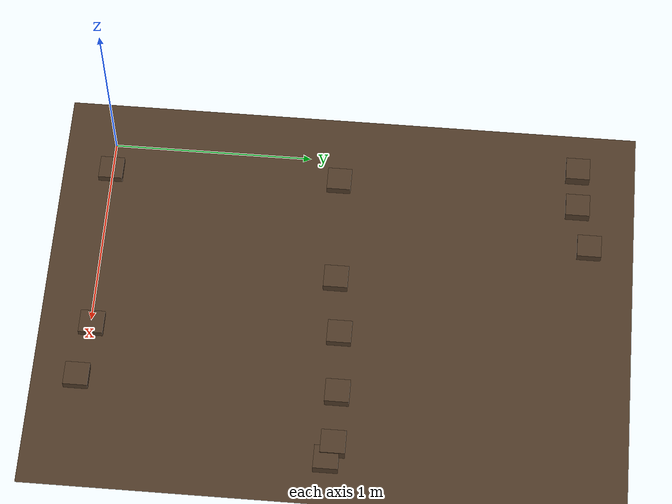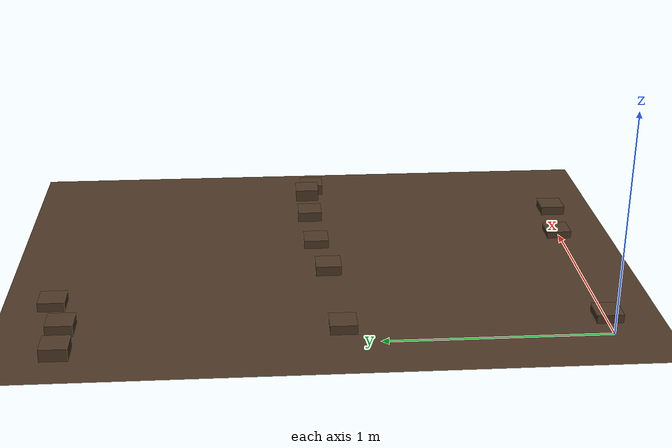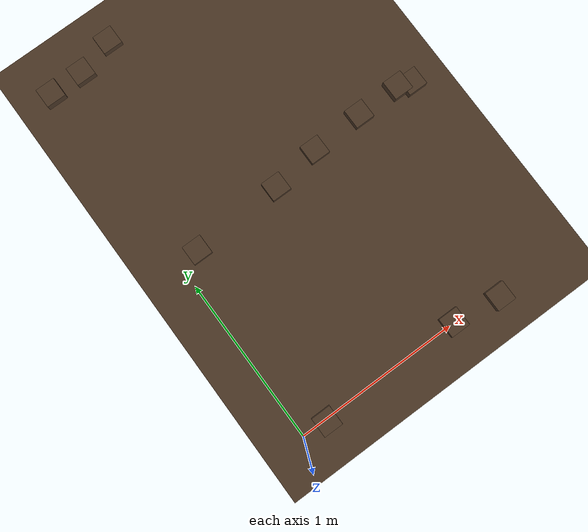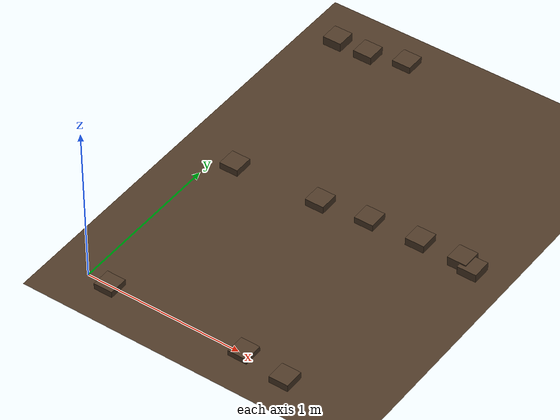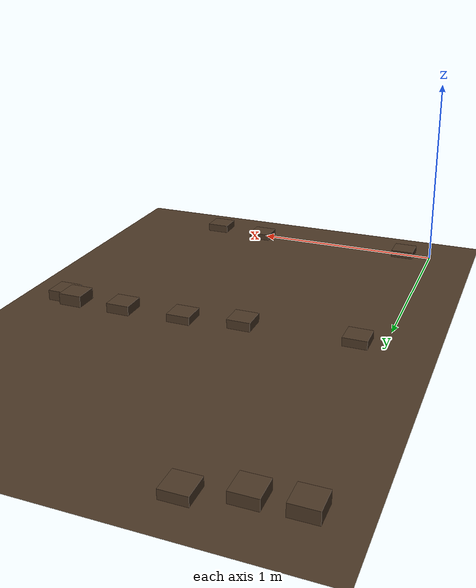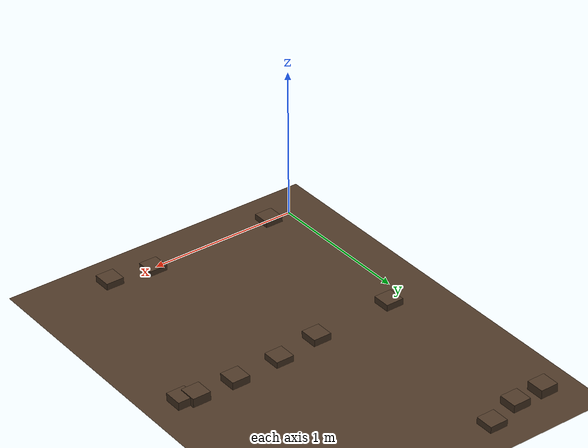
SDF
<sdf version="1.9">
 <world name="field_dev">
  <physics name="1ms" type="ignored">
   <max_step_size>0.001</max_step_size>
   <real_time_factor>1.0</real_time_factor>
  </physics>
  <plugin filename="ignition-gazebo-physics-system" name="ignition::gazebo::systems::Physics"/>
  <plugin filename="ignition-gazebo-sensors-system" name="ignition::gazebo::systems::Sensors">
   <render_engine>ogre2</render_engine>
  </plugin>
  <plugin filename="ignition-gazebo-scene-broadcaster-system" name="ignition::gazebo::systems::SceneBroadcaster"/>
  <plugin filename="ignition-gazebo-user-commands-system" name="ignition::gazebo::systems::UserCommands"/>
  <plugin filename="ignition-gazebo-imu-system" name="ignition::gazebo::systems::Imu"/>
  <scene><ambient>0.5 0.5 0.5 1</ambient><background>0.7 0.8 0.9 1</background></scene>
  <light type="directional" name="sun">
   <pose>0 0 10 0 0 0</pose>
   <diffuse>1 1 1 1</diffuse>
   <specular>0.3 0.3 0.3 1</specular>
   <direction>-0.4 0.4 -0.85</direction>
  </light>
  <model name="furrow_floor">
   <static>true</static>
   <link name="link">
    <pose>0 0 0 0.05236 0 0</pose>
    <collision name="c">
     <geometry><plane><normal>0 0 1</normal><size>200 200</size></plane></geometry>
     <surface><friction><ode><mu>0.4</mu><mu2>0.4</mu2></ode></friction></surface>
    </collision>
    <visual name="v">
     <geometry><plane><normal>0 0 1</normal><size>200 200</size></plane></geometry>
     <material><ambient>0.20 0.15 0.10 1</ambient><diffuse>0.30 0.22 0.15 1</diffuse></material>
    </visual>
   </link>
  </model>
  <model name="clod_0_0">
   <static>true</static>
   <link name="l">
    <collision name="c">
     <geometry><box><size>0.12 0.12 0.039</size></box></geometry>
     <surface><friction><ode><mu>0.4</mu><mu2>0.4</mu2></ode></friction></surface>
    </collision>
    <visual name="v">
     <geometry><box><size>0.12 0.12 0.039</size></box></geometry>
     <material><ambient>0.22 0.16 0.11 1</ambient><diffuse>0.30 0.22 0.15 1</diffuse></material>
    </visual>
    <pose>0.151 -0.006 0.020 0 0 0</pose>
   </link>
  </model>
  <model name="clod_0_1">
   <static>true</static>
   <link name="l">
    <collision name="c">
     <geometry><box><size>0.12 0.12 0.043</size></box></geometry>
     <surface><friction><ode><mu>0.4</mu><mu2>0.4</mu2></ode></friction></surface>
    </collision>
    <visual name="v">
     <geometry><box><size>0.12 0.12 0.043</size></box></geometry>
     <material><ambient>0.22 0.16 0.11 1</ambient><diffuse>0.30 0.22 0.15 1</diffuse></material>
    </visual>
    <pose>1.315 -0.029 0.021 0 0 0</pose>
   </link>
  </model>
  <model name="clod_0_2">
   <static>true</static>
   <link name="l">
    <collision name="c">
     <geometry><box><size>0.12 0.12 0.034</size></box></geometry>
     <surface><friction><ode><mu>0.4</mu><mu2>0.4</mu2></ode></friction></surface>
    </collision>
    <visual name="v">
     <geometry><box><size>0.12 0.12 0.034</size></box></geometry>
     <material><ambient>0.22 0.16 0.11 1</ambient><diffuse>0.30 0.22 0.15 1</diffuse></material>
    </visual>
    <pose>1.026 0.007 0.017 0 0 0</pose>
   </link>
  </model>
  <model name="clod_0_3">
   <static>true</static>
   <link name="l">
    <collision name="c">
     <geometry><box><size>0.12 0.12 0.049</size></box></geometry>
     <surface><friction><ode><mu>0.4</mu><mu2>0.4</mu2></ode></friction></surface>
    </collision>
    <visual name="v">
     <geometry><box><size>0.12 0.12 0.049</size></box></geometry>
     <material><ambient>0.22 0.16 0.11 1</ambient><diffuse>0.30 0.22 0.15 1</diffuse></material>
    </visual>
    <pose>1.307 1.241 0.025 0 0 0</pose>
   </link>
  </model>
  <model name="clod_0_4">
   <static>true</static>
   <link name="l">
    <collision name="c">
     <geometry><box><size>0.12 0.12 0.059</size></box></geometry>
     <surface><friction><ode><mu>0.4</mu><mu2>0.4</mu2></ode></friction></surface>
    </collision>
    <visual name="v">
     <geometry><box><size>0.12 0.12 0.059</size></box></geometry>
     <material><ambient>0.22 0.16 0.11 1</ambient><diffuse>0.30 0.22 0.15 1</diffuse></material>
    </visual>
    <pose>1.579 1.242 0.029 0 0 0</pose>
   </link>
  </model>
  <model name="clod_0_5">
   <static>true</static>
   <link name="l">
    <collision name="c">
     <geometry><box><size>0.12 0.12 0.041</size></box></geometry>
     <surface><friction><ode><mu>0.4</mu><mu2>0.4</mu2></ode></friction></surface>
    </collision>
    <visual name="v">
     <geometry><box><size>0.12 0.12 0.041</size></box></geometry>
     <material><ambient>0.22 0.16 0.11 1</ambient><diffuse>0.30 0.22 0.15 1</diffuse></material>
    </visual>
    <pose>0.985 1.225 0.020 0 0 0</pose>
   </link>
  </model>
  <model name="clod_1_0">
   <static>true</static>
   <link name="l">
    <collision name="c">
     <geometry><box><size>0.12 0.12 0.043</size></box></geometry>
     <surface><friction><ode><mu>0.4</mu><mu2>0.4</mu2></ode></friction></surface>
    </collision>
    <visual name="v">
     <geometry><box><size>0.12 0.12 0.043</size></box></geometry>
     <material><ambient>0.22 0.16 0.11 1</ambient><diffuse>0.30 0.22 0.15 1</diffuse></material>
    </visual>
    <pose>0.127 1.156 0.021 0 0 0</pose>
   </link>
  </model>
  <model name="clod_1_1">
   <static>true</static>
   <link name="l">
    <collision name="c">
     <geometry><box><size>0.12 0.12 0.052</size></box></geometry>
     <surface><friction><ode><mu>0.4</mu><mu2>0.4</mu2></ode></friction></surface>
    </collision>
    <visual name="v">
     <geometry><box><size>0.12 0.12 0.052</size></box></geometry>
     <material><ambient>0.22 0.16 0.11 1</ambient><diffuse>0.30 0.22 0.15 1</diffuse></material>
    </visual>
    <pose>1.660 1.215 0.026 0 0 0</pose>
   </link>
  </model>
  <model name="clod_1_2">
   <static>true</static>
   <link name="l">
    <collision name="c">
     <geometry><box><size>0.12 0.12 0.046</size></box></geometry>
     <surface><friction><ode><mu>0.4</mu><mu2>0.4</mu2></ode></friction></surface>
    </collision>
    <visual name="v">
     <geometry><box><size>0.12 0.12 0.046</size></box></geometry>
     <material><ambient>0.22 0.16 0.11 1</ambient><diffuse>0.30 0.22 0.15 1</diffuse></material>
    </visual>
    <pose>0.686 1.184 0.023 0 0 0</pose>
   </link>
  </model>
  <model name="clod_1_3">
   <static>true</static>
   <link name="l">
    <collision name="c">
     <geometry><box><size>0.12 0.12 0.057</size></box></geometry>
     <surface><friction><ode><mu>0.4</mu><mu2>0.4</mu2></ode></friction></surface>
    </collision>
    <visual name="v">
     <geometry><box><size>0.12 0.12 0.057</size></box></geometry>
     <material><ambient>0.22 0.16 0.11 1</ambient><diffuse>0.30 0.22 0.15 1</diffuse></material>
    </visual>
    <pose>-0.020 2.361 0.029 0 0 0</pose>
   </link>
  </model>
  <model name="clod_1_4">
   <static>true</static>
   <link name="l">
    <collision name="c">
     <geometry><box><size>0.12 0.12 0.043</size></box></geometry>
     <surface><friction><ode><mu>0.4</mu><mu2>0.4</mu2></ode></friction></surface>
    </collision>
    <visual name="v">
     <geometry><box><size>0.12 0.12 0.043</size></box></geometry>
     <material><ambient>0.22 0.16 0.11 1</ambient><diffuse>0.30 0.22 0.15 1</diffuse></material>
    </visual>
    <pose>0.413 2.432 0.021 0 0 0</pose>
   </link>
  </model>
  <model name="clod_1_5">
   <static>true</static>
   <link name="l">
    <collision name="c">
     <geometry><box><size>0.12 0.12 0.051</size></box></geometry>
     <surface><friction><ode><mu>0.4</mu><mu2>0.4</mu2></ode></friction></surface>
    </collision>
    <visual name="v">
     <geometry><box><size>0.12 0.12 0.051</size></box></geometry>
     <material><ambient>0.22 0.16 0.11 1</ambient><diffuse>0.30 0.22 0.15 1</diffuse></material>
    </visual>
    <pose>0.187 2.367 0.025 0 0 0</pose>
   </link>
  </model>
 </world>
</sdf>
